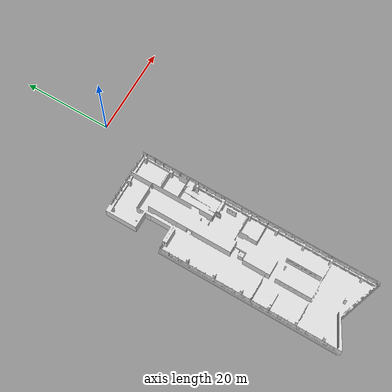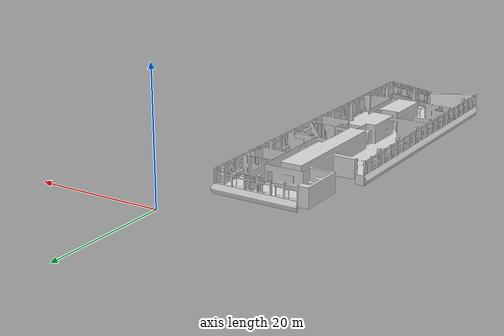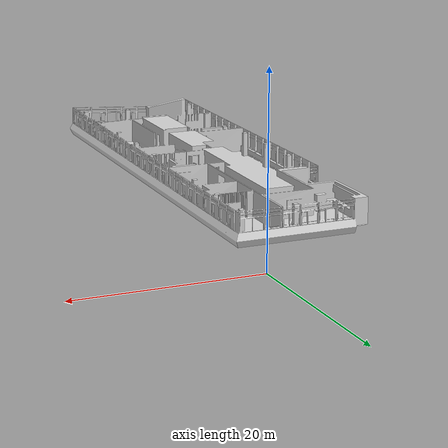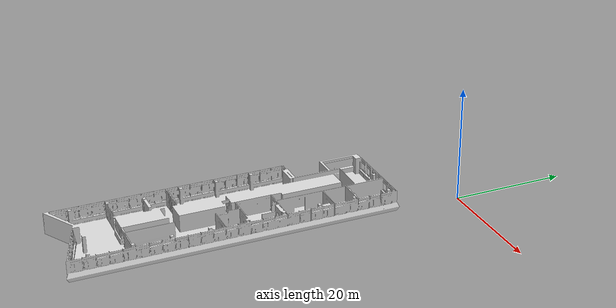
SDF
<?xml version="1.0"?>
<sdf version="1.6">
  <model name="office">
    <static>true</static>
    <pose>0 0 0 0 0 0</pose>

    <link name="office_frame">
      <visual name="visual">
        <geometry><mesh><uri>model://office/zeki-frame.stl</uri></mesh></geometry>
        <material>
          <ambient>0.7 0.7 0.7 1</ambient>
          <diffuse>0.85 0.85 0.85 1</diffuse>
          <specular>0.1 0.1 0.1 1</specular>
        </material>
      </visual>
    </link>

  </model>
</sdf>
